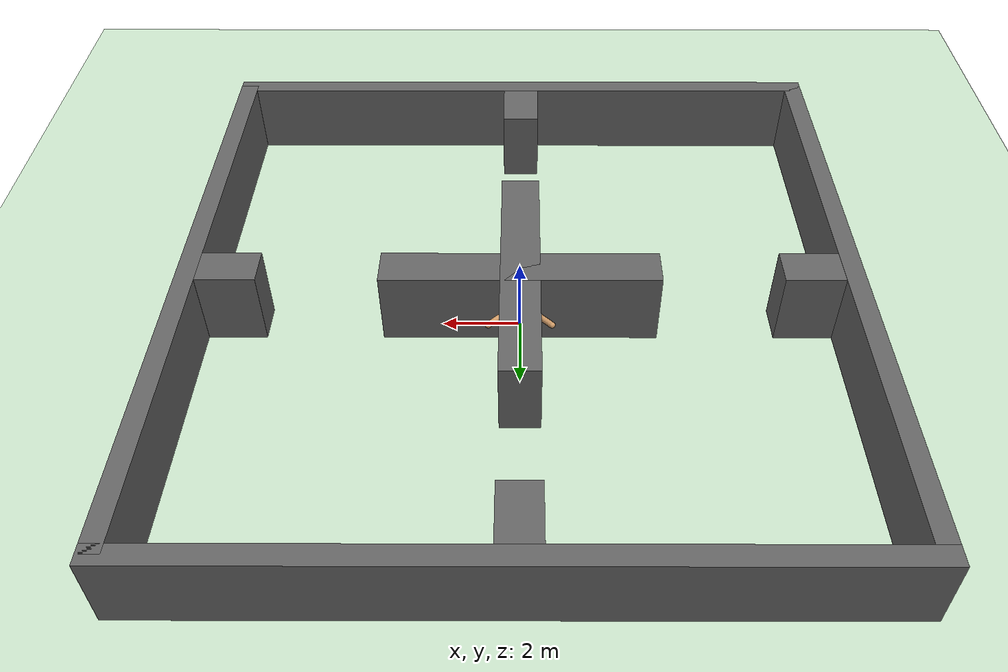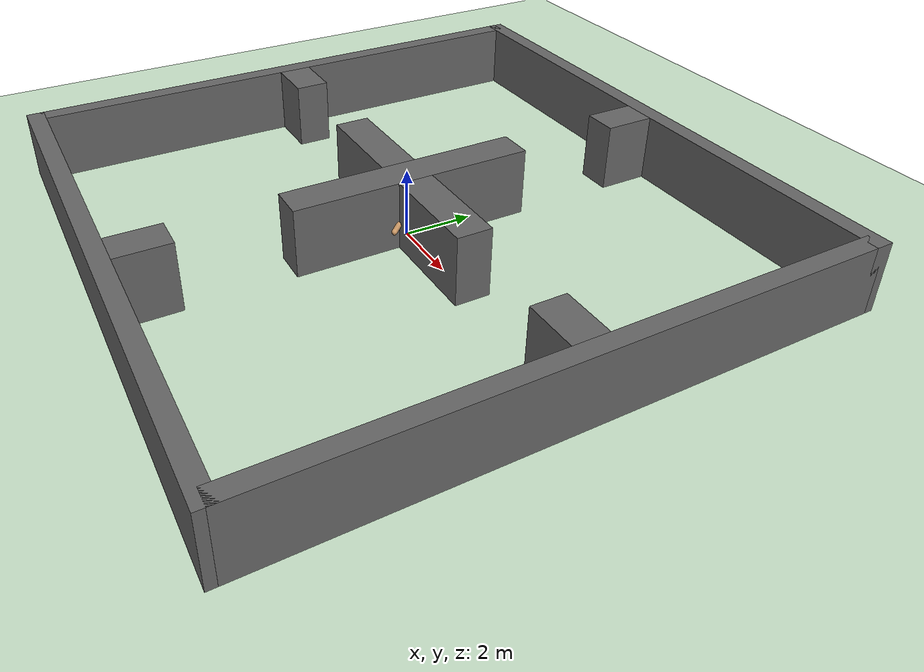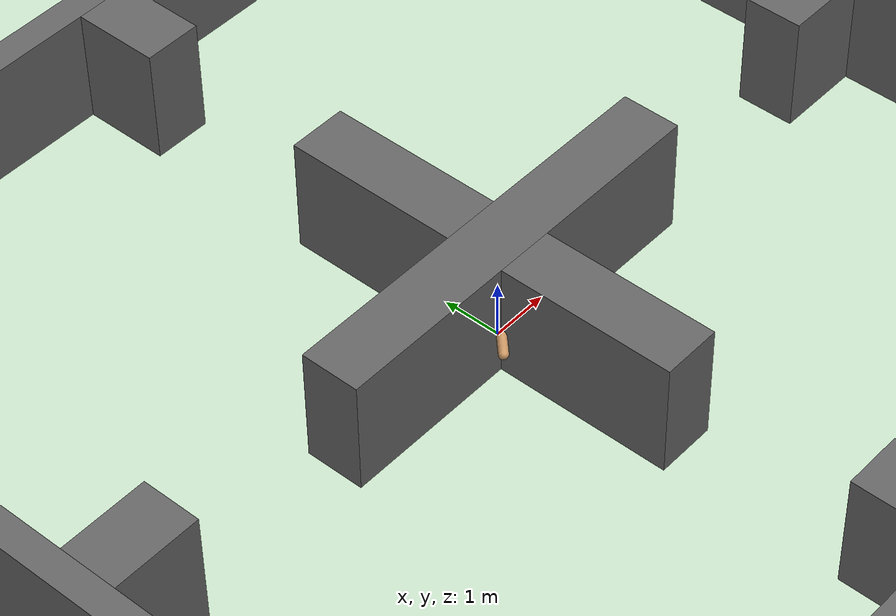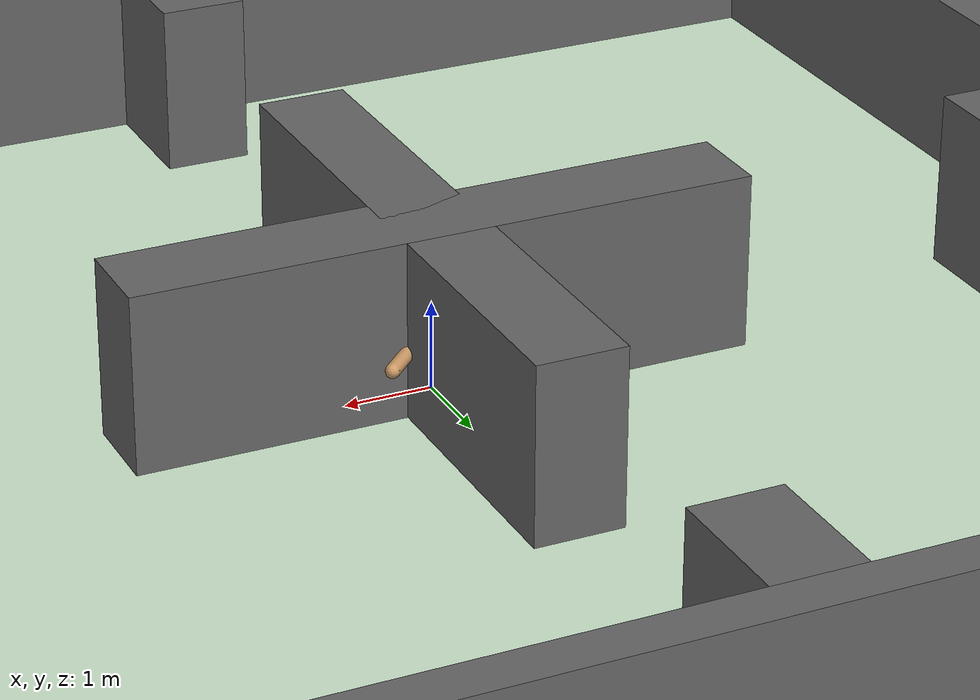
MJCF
<mujoco model="ant">
  <compiler angle="degree" coordinate="local" inertiafromgeom="true" texturedir="../textures"/>
  <option integrator="RK4" timestep="0.02"/>
  <asset>
    <texture type="cube" name="graph" file="tabula_rasa.png" />
    <material name="graph_mat" texture="graph"/>
  </asset>
  <worldbody>
    <body name="graph_body" pos="17.5 0 0.01">
       <geom contype="0" conaffinity="0" name="graph_geom" type="box" size="8.5 8.5 0.01" material="graph_mat" group="3" />
     </body>
  </worldbody>
  <custom>
    <numeric data="0.0 0.0 0.55 1.0 0.0 0.0 0.0 0.0 1.0 0.0 -1.0 0.0 -1.0 0.0 1.0" name="init_qpos"/>
  </custom>
  <default>
    <joint armature="1" damping="1" limited="true"/>
    <geom conaffinity="0" condim="3" density="5.0" friction="1 0.5 0.5" margin="0.01" rgba="0.8 0.6 0.4 1"/>
  </default>
  <asset>
    <texture type="skybox" file="sky.png" gridsize="3 4" gridlayout=".U..LFRB.D.."/>
    <texture builtin="flat" height="1278" mark="cross" markrgb="1 1 1" name="texgeom" random="0.01" rgb1="0.8 0.6 0.4" rgb2="0.8 0.6 0.4" type="cube" width="127"/>
    <texture builtin="flat" height="100" name="texplane" rgb1="0.0 0.25 0.5" type="2d" width="100"/>
    <material name="MatPlane" shininess="1" specular="1" texrepeat="60 60" texture="texplane"/>
    <material name="geom" texture="texgeom" texuniform="true"/>
  </asset>
  <worldbody>
    <light cutoff="100" diffuse="1 1 1" dir="-0 0 -1.3" directional="true" exponent="1" pos="0 0 1.3" specular=".1 .1 .1"/>
    <geom conaffinity="1" condim="3" material="MatPlane" name="floor" pos="0 0 0" rgba="0.8 0.9 0.8 1" size="40 40 40" type="plane"/>
    <body name="torso" pos="0 0 0.75">
      <camera name="track" mode="trackcom" pos="0 -3 0.3" xyaxes="1 0 0 0 0 1"/>
      <geom name="torso_geom" pos="0 0 0" size="0.25" type="sphere"/>
      <joint armature="0" damping="0" limited="false" margin="0.01" name="root" pos="0 0 0" type="free"/>
      <body name="front_left_leg" pos="0 0 0">
        <geom fromto="0.0 0.0 0.0 0.2 0.2 0.0" name="aux_1_geom" size="0.08" type="capsule"/>
        <body name="aux_1" pos="0.2 0.2 0">
          <joint axis="0 0 1" name="hip_1" pos="0.0 0.0 0.0" range="-30 30" type="hinge"/>
          <geom fromto="0.0 0.0 0.0 0.2 0.2 0.0" name="left_leg_geom" size="0.08" type="capsule"/>
          <body pos="0.2 0.2 0">
            <joint axis="-1 1 0" name="ankle_1" pos="0.0 0.0 0.0" range="30 70" type="hinge"/>
            <geom fromto="0.0 0.0 0.0 0.4 0.4 0.0" name="left_ankle_geom" size="0.08" type="capsule"/>
          </body>
        </body>
      </body>
      <body name="front_right_leg" pos="0 0 0">
        <geom fromto="0.0 0.0 0.0 -0.2 0.2 0.0" name="aux_2_geom" size="0.08" type="capsule"/>
        <body name="aux_2" pos="-0.2 0.2 0">
          <joint axis="0 0 1" name="hip_2" pos="0.0 0.0 0.0" range="-30 30" type="hinge"/>
          <geom fromto="0.0 0.0 0.0 -0.2 0.2 0.0" name="right_leg_geom" size="0.08" type="capsule"/>
          <body pos="-0.2 0.2 0">
            <joint axis="1 1 0" name="ankle_2" pos="0.0 0.0 0.0" range="-70 -30" type="hinge"/>
            <geom fromto="0.0 0.0 0.0 -0.4 0.4 0.0" name="right_ankle_geom" size="0.08" type="capsule"/>
          </body>
        </body>
      </body>
      <body name="back_leg" pos="0 0 0">
        <geom fromto="0.0 0.0 0.0 -0.2 -0.2 0.0" name="aux_3_geom" size="0.08" type="capsule"/>
        <body name="aux_3" pos="-0.2 -0.2 0">
          <joint axis="0 0 1" name="hip_3" pos="0.0 0.0 0.0" range="-30 30" type="hinge"/>
          <geom fromto="0.0 0.0 0.0 -0.2 -0.2 0.0" name="back_leg_geom" size="0.08" type="capsule"/>
          <body pos="-0.2 -0.2 0">
            <joint axis="-1 1 0" name="ankle_3" pos="0.0 0.0 0.0" range="-70 -30" type="hinge"/>
            <geom fromto="0.0 0.0 0.0 -0.4 -0.4 0.0" name="third_ankle_geom" size="0.08" type="capsule"/>
          </body>
        </body>
      </body>
      <body name="right_back_leg" pos="0 0 0">
        <geom fromto="0.0 0.0 0.0 0.2 -0.2 0.0" name="aux_4_geom" size="0.08" type="capsule"/>
        <body name="aux_4" pos="0.2 -0.2 0">
          <joint axis="0 0 1" name="hip_4" pos="0.0 0.0 0.0" range="-30 30" type="hinge"/>
          <geom fromto="0.0 0.0 0.0 0.2 -0.2 0.0" name="rightback_leg_geom" size="0.08" type="capsule"/>
          <body pos="0.2 -0.2 0">
            <joint axis="1 1 0" name="ankle_4" pos="0.0 0.0 0.0" range="30 70" type="hinge"/>
            <geom fromto="0.0 0.0 0.0 0.4 -0.4 0.0" name="fourth_ankle_geom" size="0.08" type="capsule"/>
          </body>
        </body>
      </body>
    </body>

    <!-- Create Barriers -->
    <body name="east_wall" pos="8.25 0 1">
      <geom type="box" size="0.25 8.25 1" contype="1" conaffinity="1" rgba="0.4 0.4 0.4 1" />
    </body>
    <body name="north_wall" pos="0 8.25 1">
      <geom type="box" size="8.5 0.25 1" contype="1" conaffinity="1" rgba="0.4 0.4 0.4 1" />
    </body>
    <body name="west_wall" pos="-8.25 0 1">
      <geom type="box" size="0.25 8.25 1" contype="1" conaffinity="1" rgba="0.4 0.4 0.4 1" />
    </body>
    <body name="south_wall" pos="0 -8.25 1">
      <geom type="box" size="8.5 0.25 1" contype="1" conaffinity="1" rgba="0.4 0.4 0.4 1" />
    </body>

    <body name="center_vertical" pos="0 0 1">
      <geom type="box" size="0.5 3.5 1" contype="1" conaffinity="1" rgba="0.4 0.4 0.4 1" />
    </body>
    <body name="center_horizontal" pos="0 0 1">
      <geom type="box" size="3.5 0.5 1" contype="1" conaffinity="1" rgba="0.4 0.4 0.4 1" />
    </body>
    <body name="east_stick_out" pos="7.25 0 1">
      <geom type="box" size="0.75 0.5 1" contype="1" conaffinity="1" rgba="0.4 0.4 0.4 1" />
    </body>
    <body name="north_stick_out" pos="0 7.25 1">
      <geom type="box" size="0.5 0.75 1" contype="1" conaffinity="1" rgba="0.4 0.4 0.4 1" />
    </body>
    <body name="west_stick_out" pos="-7.25 0 1">
      <geom type="box" size="0.75 0.5 1" contype="1" conaffinity="1" rgba="0.4 0.4 0.4 1" />
    </body>
    <body name="south_stick_out" pos="0 -7.25 1">
      <geom type="box" size="0.5 0.75 1" contype="1" conaffinity="1" rgba="0.4 0.4 0.4 1" />
    </body>

    <!-- Create goal and subgoal visualizations -->
    <body name="goal_platform" pos="0 0 0.4" mocap="true">
				<site type="box" size="0.4 0.4 0.2" rgba="1 1 0 1" />
		</body>

    <body name="subgoal_0" pos="0 0 0.4" mocap="true">
				<site type="box" size="0.4 0.4 0.2" rgba="1 0 1 0" />
		</body>
    <body name="subgoal_1" pos="0 0 0.4" mocap="true">
				<site type="box" size="0.4 0.4 0.2" rgba="0 1 0 0" />
		</body>

  </worldbody>
  <actuator>
    <motor ctrllimited="true" ctrlrange="-1.0 1.0" joint="hip_4" gear="15"/>
    <motor ctrllimited="true" ctrlrange="-1.0 1.0" joint="ankle_4" gear="15"/>
    <motor ctrllimited="true" ctrlrange="-1.0 1.0" joint="hip_1" gear="15"/>
    <motor ctrllimited="true" ctrlrange="-1.0 1.0" joint="ankle_1" gear="15"/>
    <motor ctrllimited="true" ctrlrange="-1.0 1.0" joint="hip_2" gear="15"/>
    <motor ctrllimited="true" ctrlrange="-1.0 1.0" joint="ankle_2" gear="15"/>
    <motor ctrllimited="true" ctrlrange="-1.0 1.0" joint="hip_3" gear="15"/>
    <motor ctrllimited="true" ctrlrange="-1.0 1.0" joint="ankle_3" gear="15"/>
  </actuator>
</mujoco>
